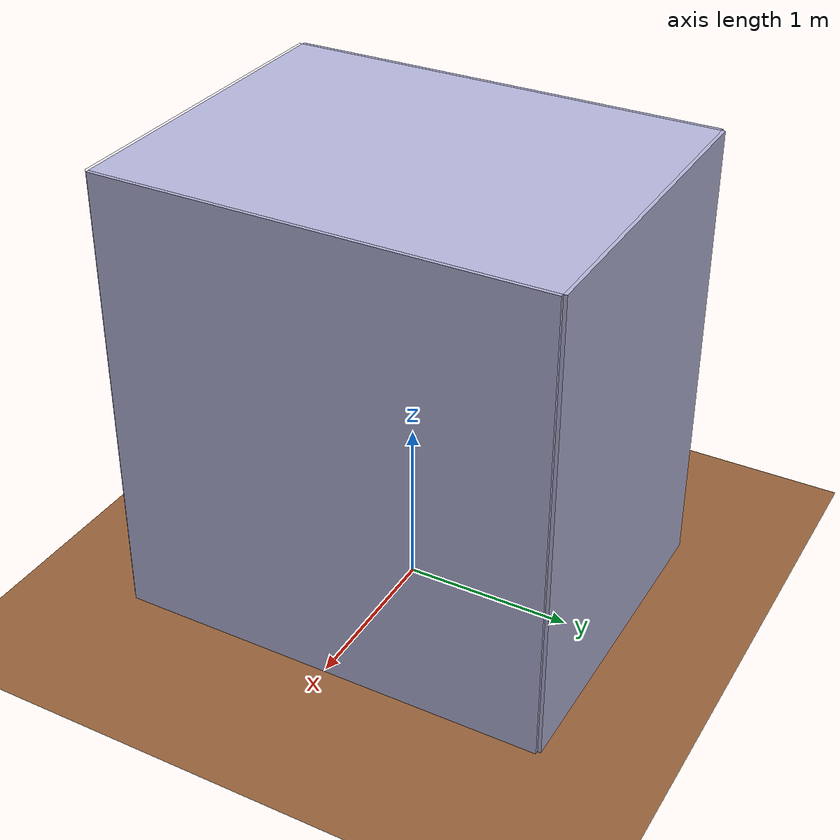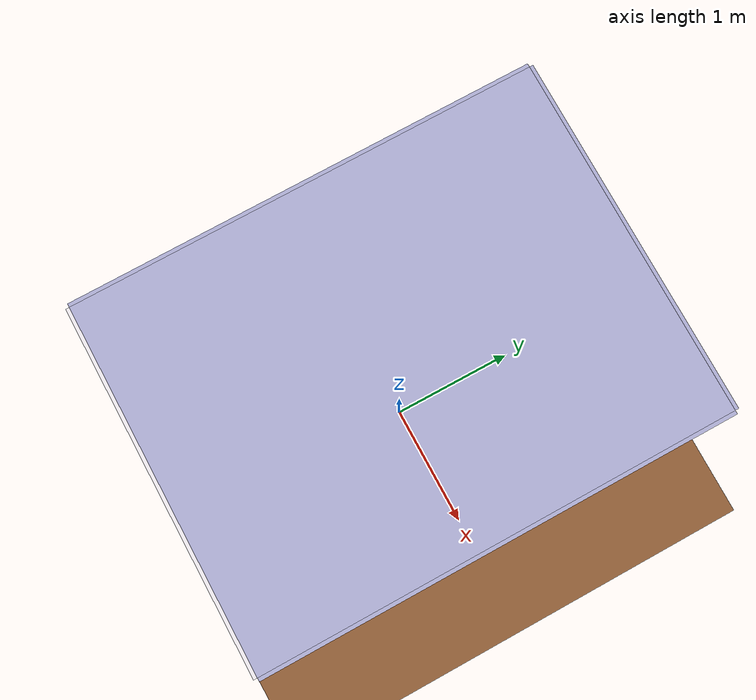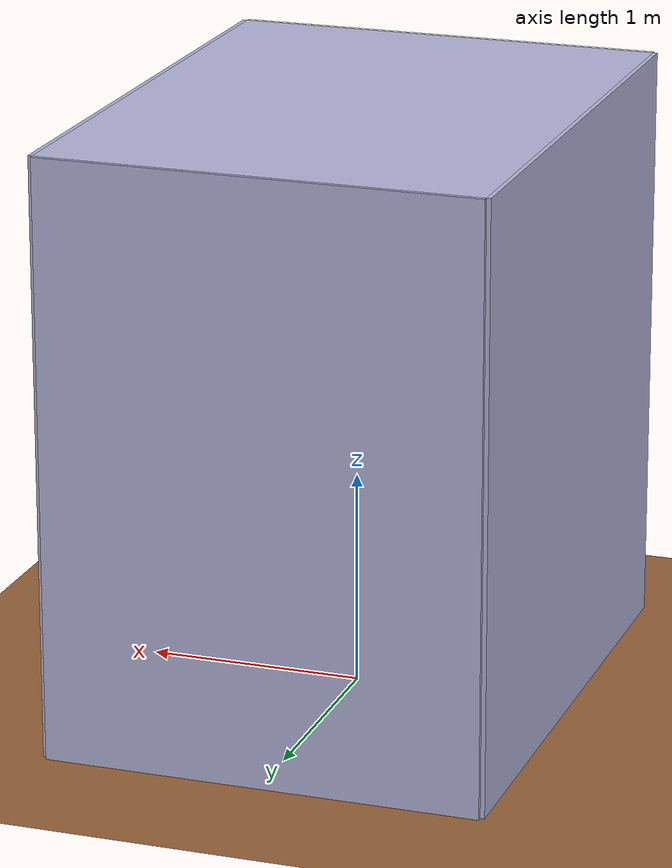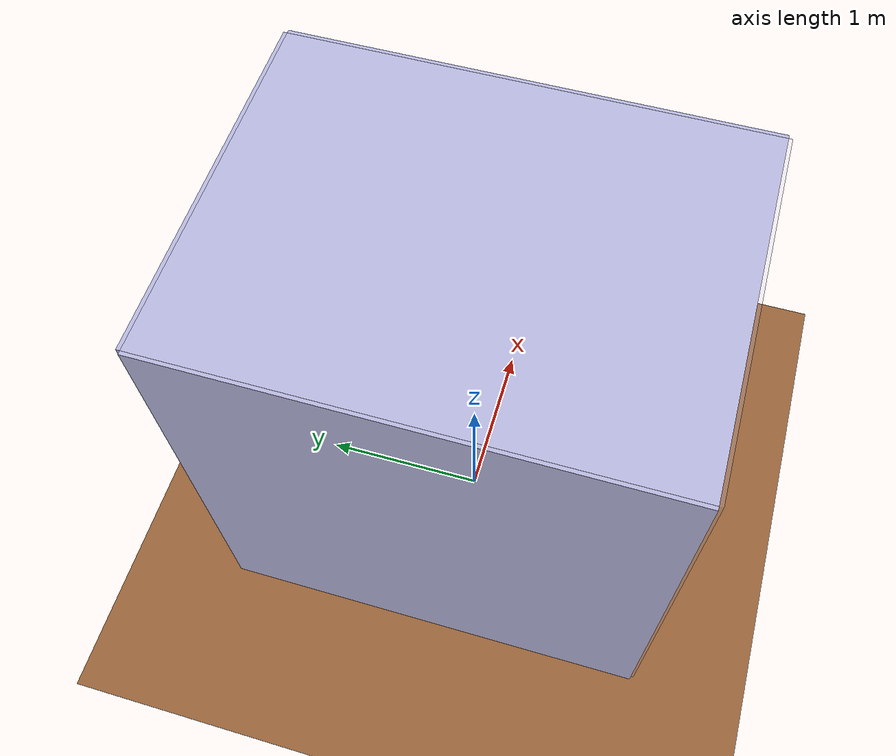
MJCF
<mujoco>
    <!-- Truck segment: depth X=2.0, width Y=2.6, height Z=2.75 (half-sizes 1.0, 1.3, 1.375). U open toward -Y. -->
    <asset>
        <!-- Procedural plank-ish checker (no image file); texrepeat ~ grid on 2.0×2.6 m floor -->
        <texture name="wood_floor_tex" type="2d" builtin="flat" width="512" height="512"
            rgb1="0.58 0.38 0.22" rgb2="0.46 0.29 0.16"/>
        <material name="wood_floor" texture="wood_floor_tex" texuniform="false" texrepeat="10 13"
            specular="0.25" shininess="0.35"/>
    </asset>

    <visual>
  <headlight active="1"
             ambient="0.4 0.4 0.4"
             diffuse="0.8 0.8 0.8"
             specular="0.1 0.1 0.1"/>
</visual>

    <worldbody>
        <light diffuse="0.5 0.5 0.5" pos="0 0 4" dir="0 0 -1"/>

        <!-- Infinite floor plane at z=0 for robust contact -->
        <geom name="floor" type="plane" pos="0 0 0" size="2.0 2.0 0.1" material="wood_floor"/>

        <!-- Inner cavity: x in [-1,1], y in [-1.3,1.3], z in [0,2.75]. Wall half-thickness 0.01 (2 cm). -->
        <geom name="wall_back" type="box" pos="0 1.31 1.375" size="1.0 0.01 1.375" rgba="0.7 0.7 0.85 1"/>
        <geom name="wall_front_clear" type="box" pos="0 -1.31 1.375" size="1.0 0.01 1.375" rgba="0.7 0.7 0.85 0.15"/>
        <geom name="wall_left" type="box" pos="-1.01 0 1.375" size="0.01 1.3 1.375" rgba="0.7 0.7 0.85 1"/>
        <geom name="wall_right" type="box" pos="1.01 0 1.375" size="0.01 1.3 1.375" rgba="0.7 0.7 0.85 1"/>

        <geom name="ceiling" type="box" pos="0 0 2.74" size="1.0 1.3 0.01" rgba="0.7 0.7 0.85 1"/>

    </worldbody>
</mujoco>
